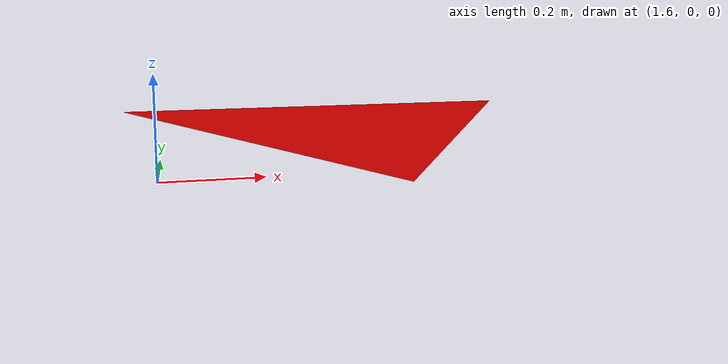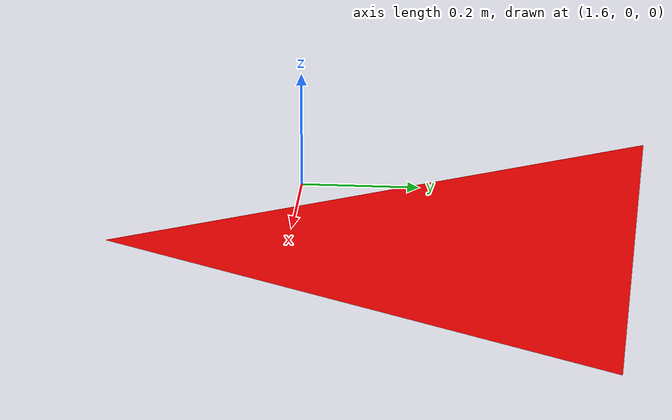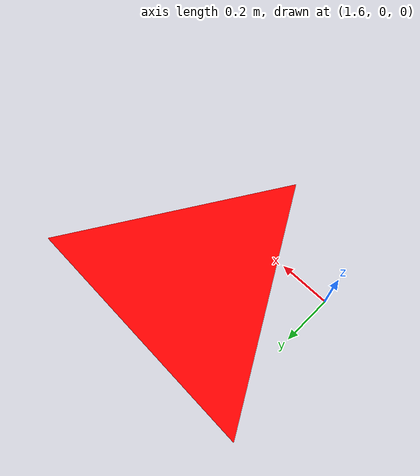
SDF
<?xml version="1.0" ?>
<sdf version="1.9">
  <model name="red_triangle">
    <static>true</static>
    <pose>2 0 0.05 0 0 0</pose> <!-- 2 m sağda -->
    <link name="link">
      <visual name="visual">
        <geometry>
          <mesh>
            <uri>../../materials/meshes/triangle_red_1m_2cm.stl</uri>
          </mesh>
        </geometry>
        <material>
          <ambient>1 0 0 1</ambient>
          <diffuse>1 0 0 1</diffuse>
          <specular>0.1 0.1 0.1 1</specular>
          <double_sided>true</double_sided>
        </material>
      </visual>

      <!-- Thin above, thick below - see blue_hexagon for the tunnelling
           measurement that forced this. Top at world z=0.006, bulk
           underground. -->
      <collision name="collision">
        <pose>0 0.144 -0.047 0 0 0</pose>
        <geometry>
          <box><size>1 0.866 0.1</size></box>
        </geometry>
      </collision>
    </link>
  </model>
</sdf>
